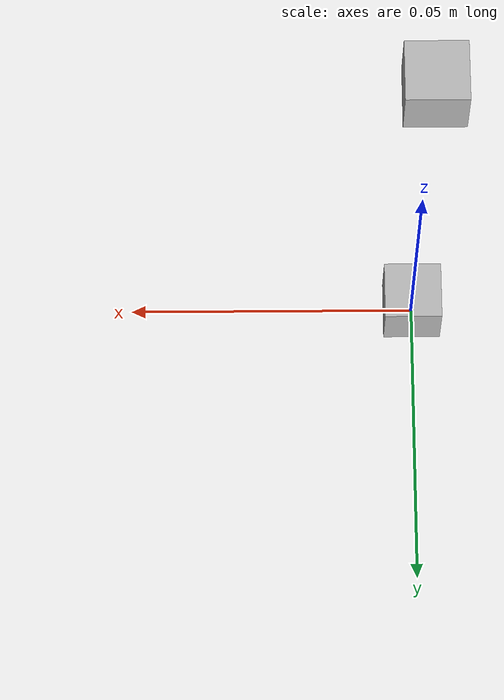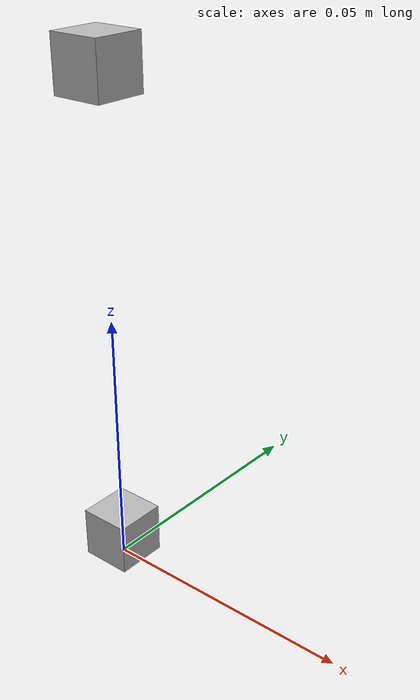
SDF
<?xml version="1.0" ?>
<sdf version="1.5">
  <model name="spring">
    <pose>0 0 0  0 0 0</pose>
    <static>0</static>

    <link name="head1">
      <pose>0 0 0.005 0 0 0</pose>
      <visual name="visual">
        <geometry>
          <box> <size>0.01 0.01 0.01</size> </box>
        </geometry>
      </visual>
      <collision name="visual">
        <geometry>
          <box> <size>0.01 0.01 0.01</size> </box>
        </geometry>
      </collision>
    </link>

    <link name="head2">
      <pose> 0 0 0.095 0 0 0 </pose>
      <visual name="visual">
        <geometry>
          <box> <size>0.01 0.01 0.01</size> </box>
        </geometry>
      </visual>
      <collision name="visual">
        <geometry>
          <box> <size>0.01 0.01 0.01 </size> </box>
        </geometry>
      </collision>
    </link>

    <joint type="prismatic" name="spring">
      <child>head1</child>
      <parent>head2</parent>
      <axis>
        <limit>
          <lower>0.01</lower>
          <upper>0.09</upper>
        </limit>
        <xyz>0 0 1</xyz>
      </axis>
    </joint>

    <plugin filename="libSpring.so" name="Spring">
      <joint_name>spring</joint_name>
      <spring_constant>500</spring_constant>
    </plugin>

  </model>
</sdf>
